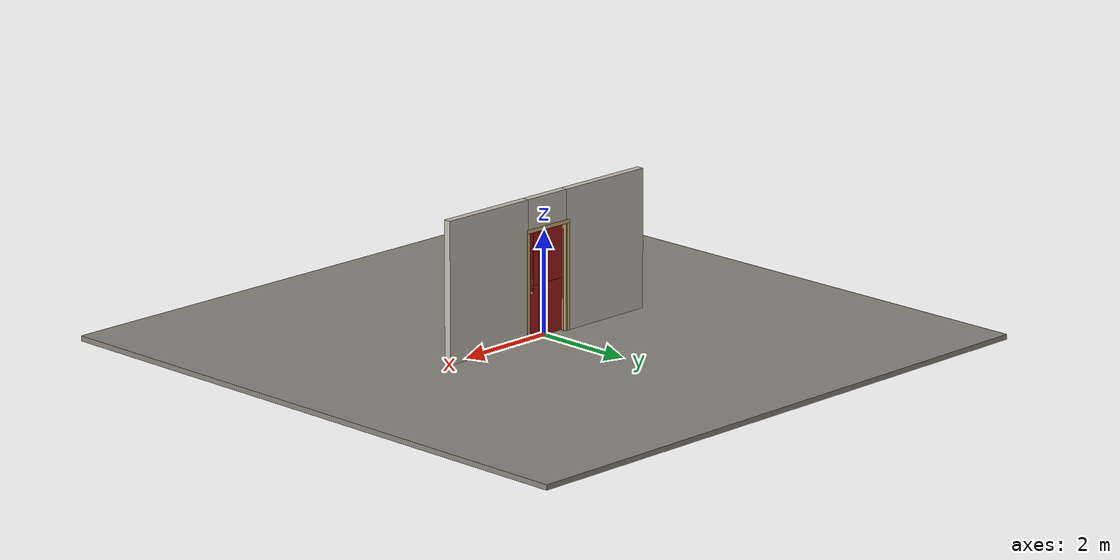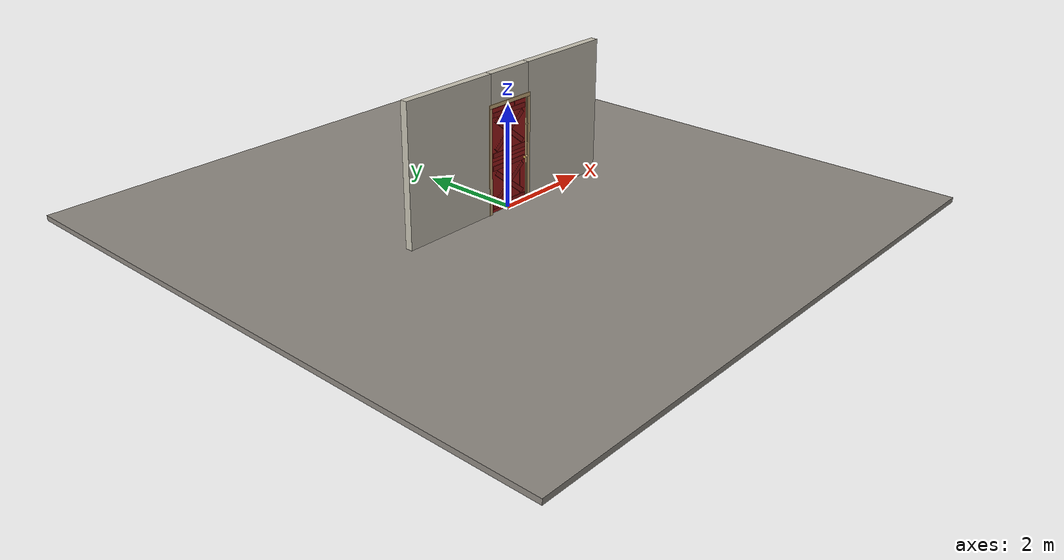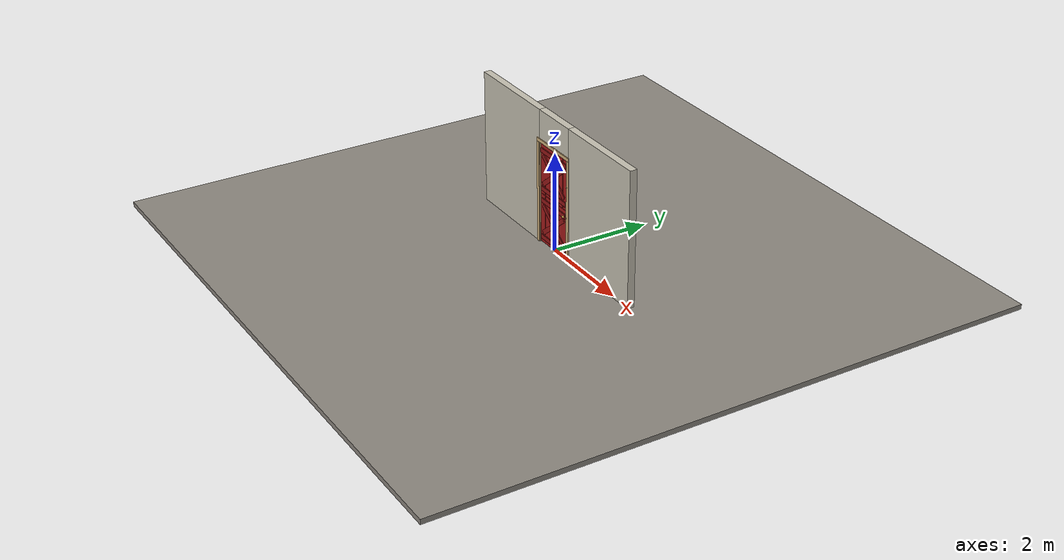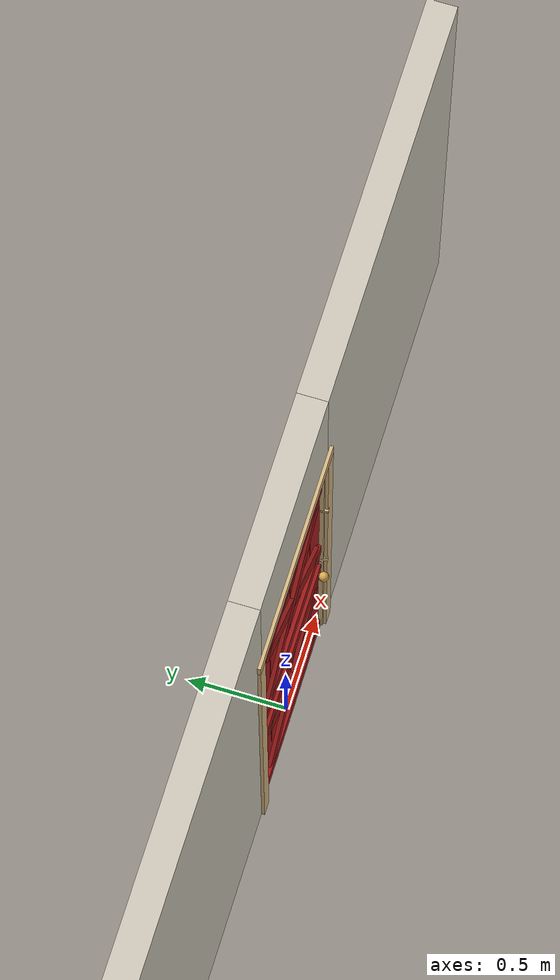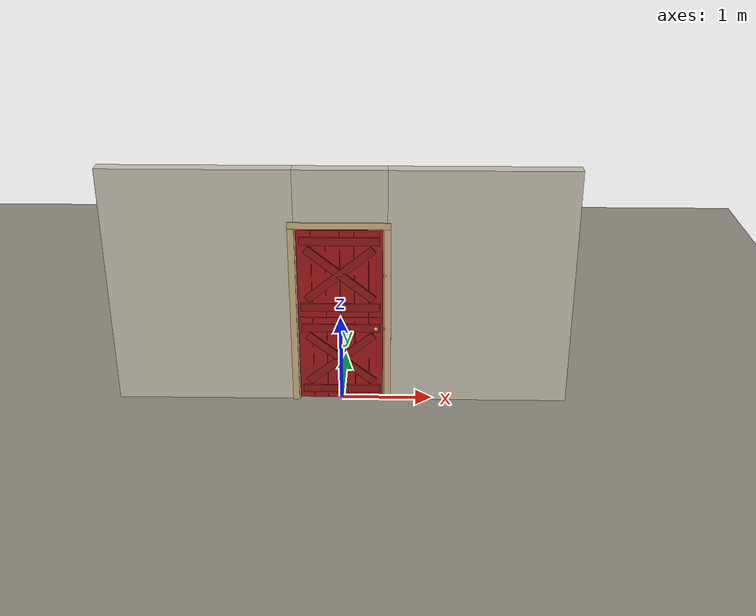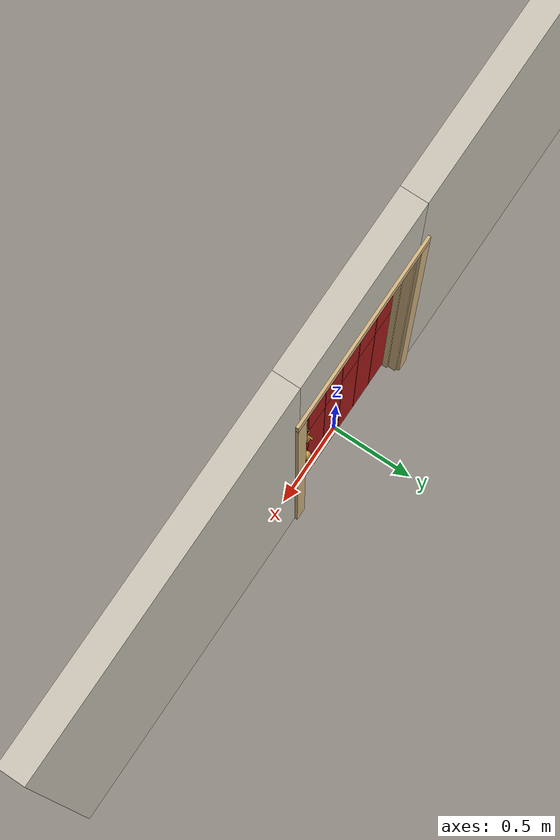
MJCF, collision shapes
<?xml version="1.0" ?>
<mujoco model="db0847_dutch_full">
  <compiler angle="radian" meshdir="../../hardware" texturedir="../../textures" autolimits="true" inertiafromgeom="false"/>
  <option timestep="0.002" integrator="implicitfast" cone="elliptic" impratio="10" noslip_iterations="3">
    <flag multiccd="enable"/>
  </option>
  <size memory="16M"/>
  <default>
    <geom condim="4" solref="0.005 1" solimp="0.95 0.99 0.001"/>
    <joint solreflimit="0.005 1" solimplimit="0.95 0.99 0.001"/>
    <tendon solreflimit="0.005 1"/>
    <equality solref="0.002 1"/>
  </default>
  <visual>
    <headlight ambient="0.4 0.4 0.4" diffuse="0.7 0.7 0.7" specular="0.2 0.2 0.2"/>
    <quality shadowsize="4096"/>
    <map znear="0.01" zfar="60"/>
  </visual>
  <asset>
    <mesh name="hinge_e22b26c0c1" file="hinge_e22b26c0c1.obj"/>
    <mesh name="hinge_jamb_e1d088f8dc" file="hinge_jamb_e1d088f8dc.obj"/>
    <mesh name="knob_d1888f6f03" file="knob_d1888f6f03.obj"/>
    <material name="mat_floor" rgba="0.55 0.53 0.5 1" specular="0.2" shininess="0.15" reflectance="0"/>
    <material name="mat_wall" rgba="0.78 0.76 0.7 1" specular="0.2" shininess="0.1" reflectance="0"/>
    <material name="mat_leaf_lower" rgba="0.65 0.1 0.1 1" specular="0.2" shininess="0.49" reflectance="0"/>
    <material name="mat_leaf_lower_brace" rgba="0.585 0.09 0.09 1" specular="0.2" shininess="0.2" reflectance="0"/>
    <material name="mat_leaf_upper" rgba="0.65 0.1 0.1 1" specular="0.2" shininess="0.49" reflectance="0"/>
    <material name="mat_leaf_upper_brace" rgba="0.585 0.09 0.09 1" specular="0.2" shininess="0.2" reflectance="0"/>
    <material name="mat_op_brass" rgba="0.85 0.66 0.3 1" specular="0.8" shininess="0.75" reflectance="0.4"/>
    <material name="mat_trim" rgba="0.85 0.66 0.3 1" specular="0.8" shininess="0.75" reflectance="0.4"/>
    <material name="mat_bolt" rgba="0.85 0.66 0.3 1" specular="0.8" shininess="0.75" reflectance="0.4"/>
    <material name="mat_joinbolt" rgba="0.85 0.66 0.3 1" specular="0.8" shininess="0.75" reflectance="0.4"/>
    <material name="mat_frame" rgba="0.82 0.7 0.5 1" specular="0.2" shininess="0.45" reflectance="0"/>
    <material name="mat_seal" rgba="0.1 0.1 0.1 1" specular="0.2" shininess="0.1" reflectance="0"/>
    <material name="mat_hinge" rgba="0.65 0.66 0.68 1" specular="0.74" shininess="0.5" reflectance="0.36"/>
    <texture name="skybox" type="skybox" builtin="gradient" rgb1="0.6 0.7 0.85" rgb2="0.9 0.92 0.95" width="256" height="256"/>
  </asset>
  <worldbody>
    <light name="sun" pos="1.5 -2.5 4" dir="-0.3 0.5 -0.8" directional="true" diffuse="0.8 0.8 0.8" specular="0.3 0.3 0.3" castshadow="true"/>
    <light name="fill" pos="-1.5 2.5 3" dir="0.3 -0.5 -0.7" directional="true" diffuse="0.35 0.35 0.4" castshadow="false"/>
    <camera name="robot_view" pos="0 -2.511687 1.734312" xyaxes="1 0 0 0 0.26963 0.962964" fovy="52"/>
    <camera name="far_view" pos="0 2.572687 1.734312" xyaxes="-1 0 0 0 -0.26963 0.962964" fovy="52"/>
    <camera name="iso" pos="1.932062 -2.104938 2.141063" xyaxes="0.741536 0.670913 0 -0.242917 0.268487 0.932151" fovy="46"/>
    <camera name="detail_handle" pos="0.5665 -0.8685 1.176" xyaxes="0.97561 0.219512 0 -0.070934 0.315262 0.94635" fovy="38"/>
    <geom name="floor" type="box" size="6 6 0.05" pos="0 0 -0.05" material="mat_floor" group="0" contype="1" conaffinity="1" friction="0.8 0.005 0.0001" density="2400"/>
    <geom name="wall_left" type="box" size="1.01025 0.0725 1.35" pos="-1.48975 0.0305 1.35" material="mat_wall" group="0" contype="1" conaffinity="1" friction="0.6 0.005 0.0001" density="800"/>
    <geom name="wall_right" type="box" size="0.99525 0.0725 1.35" pos="1.50475 0.0305 1.35" material="mat_wall" group="0" contype="1" conaffinity="1" friction="0.6 0.005 0.0001" density="800"/>
    <geom name="wall_header" type="box" size="0.4945 0.0725 0.303" pos="0.015 0.0305 2.397" material="mat_wall" group="0" contype="1" conaffinity="1" friction="0.6 0.005 0.0001" density="800"/>
    <geom name="jamb_hinge" type="box" size="0.0095 0.0725 1.0225" pos="-0.47 0.0305 1.0225" material="mat_frame" group="0" contype="1" conaffinity="1" friction="0.6 0.005 0.0001" density="400"/>
    <geom name="strike_896_wall_n" type="box" size="0.0245 0.047575 0.0167" pos="0.485 0.055425 0.896" material="mat_frame" group="0" contype="1" conaffinity="1" friction="0.6 0.005 0.0001" density="400"/>
    <geom name="strike_896_wall_p" type="box" size="0.0245 0.008 0.0167" pos="0.485 -0.01585 0.896" material="mat_frame" group="0" contype="1" conaffinity="1" friction="0.6 0.005 0.0001" density="400"/>
    <geom name="strike_896_ramp" type="box" size="0.0245 0.020268 0.0167" pos="0.490408 -0.034645 0.896" quat="0.985179 0 0 0.171531" material="mat_frame" group="0" contype="1" conaffinity="1" friction="0.12 0.005 0.0001" density="400"/>
    <geom name="strike_896_back" type="box" size="0.01615 0.00785 0.0167" pos="0.49335 0 0.896" material="mat_frame" group="0" contype="1" conaffinity="1" friction="0.6 0.005 0.0001" density="400"/>
    <geom name="strike_1524_wall_n" type="box" size="0.0245 0.04775 0.01" pos="0.485 0.05525 1.524" material="mat_frame" group="0" contype="1" conaffinity="1" friction="0.6 0.005 0.0001" density="400"/>
    <geom name="strike_1524_wall_p" type="box" size="0.0245 0.008 0.01" pos="0.485 -0.0155 1.524" material="mat_frame" group="0" contype="1" conaffinity="1" friction="0.6 0.005 0.0001" density="400"/>
    <geom name="strike_1524_ramp" type="box" size="0.0245 0.019412 0.01" pos="0.487296 -0.039595 1.524" quat="0.997916 0 0 0.064529" material="mat_frame" group="0" contype="1" conaffinity="1" friction="0.12 0.005 0.0001" density="400"/>
    <geom name="strike_1524_ramp_n" type="box" size="0.0245 0.019412 0.01" pos="0.487296 0.027595 1.524" quat="0.997916 0 0 -0.064529" material="mat_frame" group="0" contype="1" conaffinity="1" friction="0.12 0.005 0.0001" density="400"/>
    <geom name="strike_1524_back" type="box" size="0.0205 0.0075 0.01" pos="0.489 0 1.524" material="mat_frame" group="0" contype="1" conaffinity="1" friction="0.6 0.005 0.0001" density="400"/>
    <geom name="jamb_strike_0" type="box" size="0.0245 0.0725 0.43965" pos="0.485 0.0305 0.43965" material="mat_frame" group="0" contype="1" conaffinity="1" friction="0.6 0.005 0.0001" density="400"/>
    <geom name="jamb_strike_1" type="box" size="0.0245 0.0725 0.30065" pos="0.485 0.0305 1.21335" material="mat_frame" group="0" contype="1" conaffinity="1" friction="0.6 0.005 0.0001" density="400"/>
    <geom name="jamb_strike_2" type="box" size="0.0245 0.0725 0.2555" pos="0.485 0.0305 1.7895" material="mat_frame" group="0" contype="1" conaffinity="1" friction="0.6 0.005 0.0001" density="400"/>
    <geom name="jamb_head" type="box" size="0.4945 0.0725 0.0095" pos="0.015 0.0305 2.0545" material="mat_frame" group="0" contype="1" conaffinity="1" friction="0.6 0.005 0.0001" density="400"/>
    <geom name="head_stud" type="box" size="0.4945 0.0725 0.015" pos="0.015 0.0305 2.079" material="mat_wall" group="0" contype="1" conaffinity="1" friction="0.6 0.005 0.0001" density="500"/>
    <geom name="stop_hinge" type="box" size="0.0055 0.016 1.0225" pos="-0.455 0.0385 1.0225" material="mat_frame" group="0" contype="1" conaffinity="1" friction="0.6 0.005 0.0001" density="400"/>
    <geom name="stop_strike" type="box" size="0.0055 0.016 1.0225" pos="0.455 0.0385 1.0225" material="mat_frame" group="0" contype="1" conaffinity="1" friction="0.6 0.005 0.0001" density="400"/>
    <geom name="stop_head" type="box" size="0.4605 0.016 0.0055" pos="0 0.0385 2.0395" material="mat_frame" group="0" contype="1" conaffinity="1" friction="0.6 0.005 0.0001" density="400"/>
    <geom name="seal_hinge" type="box" size="0.004 0.003 1.0225" pos="-0.4575 0.025 1.0225" material="mat_seal" group="1" contype="0" conaffinity="0" density="1100"/>
    <geom name="seal_strike" type="box" size="0.004 0.003 1.0225" pos="0.4575 0.025 1.0225" material="mat_seal" group="1" contype="0" conaffinity="0" density="1100"/>
    <geom name="seal_head" type="box" size="0.4405 0.003 0.008" pos="0 0.025 2.033" material="mat_seal" group="1" contype="0" conaffinity="0" density="1100"/>
    <geom name="casing_l_n" type="box" size="0.035 0.008 1.032" pos="-0.5095 -0.05 1.0225" material="mat_frame" group="2" contype="0" conaffinity="0" density="400"/>
    <geom name="casing_r_n" type="box" size="0.035 0.008 1.032" pos="0.5095 -0.05 1.0225" material="mat_frame" group="2" contype="0" conaffinity="0" density="400"/>
    <geom name="casing_h_n" type="box" size="0.5445 0.008 0.035" pos="0 -0.05 2.094" material="mat_frame" group="2" contype="0" conaffinity="0" density="400"/>
    <geom name="casing_l_p" type="box" size="0.035 0.008 1.032" pos="-0.5095 0.111 1.0225" material="mat_frame" group="2" contype="0" conaffinity="0" density="400"/>
    <geom name="casing_r_p" type="box" size="0.035 0.008 1.032" pos="0.5095 0.111 1.0225" material="mat_frame" group="2" contype="0" conaffinity="0" density="400"/>
    <geom name="casing_h_p" type="box" size="0.5445 0.008 0.035" pos="0 0.111 2.094" material="mat_frame" group="2" contype="0" conaffinity="0" density="400"/>
    <geom name="hinge_0_jamb" type="mesh" mesh="hinge_jamb_e1d088f8dc" pos="-0.4605 -0.029 0.262" material="mat_hinge" group="1" contype="0" conaffinity="0" density="7850"/>
    <geom name="hinge_1_jamb" type="mesh" mesh="hinge_jamb_e1d088f8dc" pos="-0.4605 -0.029 0.452" material="mat_hinge" group="1" contype="0" conaffinity="0" density="7850"/>
    <geom name="hinge_2_jamb" type="mesh" mesh="hinge_jamb_e1d088f8dc" pos="-0.4605 -0.029 0.642" material="mat_hinge" group="1" contype="0" conaffinity="0" density="7850"/>
    <geom name="hinge_3_jamb" type="mesh" mesh="hinge_jamb_e1d088f8dc" pos="-0.4605 -0.029 0.832" material="mat_hinge" group="1" contype="0" conaffinity="0" density="7850"/>
    <geom name="hinge_0_jamb_2" type="mesh" mesh="hinge_jamb_e1d088f8dc" pos="-0.4605 -0.029 1.27" material="mat_hinge" group="1" contype="0" conaffinity="0" density="7850"/>
    <geom name="hinge_1_jamb_2" type="mesh" mesh="hinge_jamb_e1d088f8dc" pos="-0.4605 -0.029 1.464" material="mat_hinge" group="1" contype="0" conaffinity="0" density="7850"/>
    <geom name="hinge_2_jamb_2" type="mesh" mesh="hinge_jamb_e1d088f8dc" pos="-0.4605 -0.029 1.658" material="mat_hinge" group="1" contype="0" conaffinity="0" density="7850"/>
    <geom name="hinge_3_jamb_2" type="mesh" mesh="hinge_jamb_e1d088f8dc" pos="-0.4605 -0.029 1.852" material="mat_hinge" group="1" contype="0" conaffinity="0" density="7850"/>
    <site name="approach_point" pos="0 -1.5 0" quat="1 0 0 0" size="0.05" rgba="0.2 0.9 0.2 0.5" group="4"/>
    <site name="goal_point" pos="0 1.5 0" quat="1 0 0 0" size="0.05" rgba="0.2 0.9 0.2 0.5" group="4"/>
    <site name="door_plane_center" pos="0 0 1.0225" quat="1 0 0 0" size="0.02" rgba="0.2 0.9 0.2 0.5" group="4"/>
    <body name="leaf_lower" pos="-0.4605 0 0">
      <inertial pos="0.07502 -0.014211 0.574053" mass="30.766573" quat="0.30158 0.270319 0.651505 -0.641497" diaginertia="1.038222689 2.311571435 3.3339367"/>
      <joint name="leaf_lower_hinge" type="hinge" axis="0 0 -1" pos="0.003 -0.029 0" limited="true" range="0 1.396263" solreflimit="0.02 1" damping="0.30611" frictionloss="0.699742" armature="0.02"/>
      <geom name="leaf_lower_slab" type="box" size="0.457 0.022 0.5" pos="0.46 0 0.512" material="mat_leaf_lower" group="0" contype="1" conaffinity="1" friction="0.4 0.005 0.0001" density="1"/>
      <geom name="leaf_lower_plank_gap_1" type="box" size="0.002 0.023 0.49" pos="0.155333 0 0.512" material="mat_leaf_lower_brace" group="1" contype="0" conaffinity="0" density="1"/>
      <geom name="leaf_lower_plank_gap_2" type="box" size="0.002 0.023 0.49" pos="0.307667 0 0.512" material="mat_leaf_lower_brace" group="1" contype="0" conaffinity="0" density="1"/>
      <geom name="leaf_lower_plank_gap_3" type="box" size="0.002 0.023 0.49" pos="0.46 0 0.512" material="mat_leaf_lower_brace" group="1" contype="0" conaffinity="0" density="1"/>
      <geom name="leaf_lower_plank_gap_4" type="box" size="0.002 0.023 0.49" pos="0.612333 0 0.512" material="mat_leaf_lower_brace" group="1" contype="0" conaffinity="0" density="1"/>
      <geom name="leaf_lower_plank_gap_5" type="box" size="0.002 0.023 0.49" pos="0.764667 0 0.512" material="mat_leaf_lower_brace" group="1" contype="0" conaffinity="0" density="1"/>
      <geom name="leaf_lower_batten_13" type="box" size="0.427 0.01 0.045" pos="0.46 -0.032 0.132" material="mat_leaf_lower_brace" group="1" contype="0" conaffinity="0" density="1"/>
      <geom name="leaf_lower_batten_89" type="box" size="0.427 0.01 0.045" pos="0.46 -0.032 0.892" material="mat_leaf_lower_brace" group="1" contype="0" conaffinity="0" density="1"/>
      <geom name="leaf_lower_brace_z" type="box" size="0.46084 0.01 0.045" pos="0.46 -0.032 0.512" quat="0.943777 0 -0.330582 0" material="mat_leaf_lower_brace" group="1" contype="0" conaffinity="0" density="1"/>
      <geom name="leaf_lower_brace_x" type="box" size="0.46084 0.01 0.045" pos="0.46 -0.032 0.512" quat="0.943777 0 0.330582 0" material="mat_leaf_lower_brace" group="1" contype="0" conaffinity="0" density="1"/>
      <geom name="lower_latch_bolt_faceplate" type="box" size="0.0006 0.01235 0.0267" pos="0.9164 0 0.896" material="mat_bolt" group="1" contype="0" conaffinity="0" density="8500"/>
      <geom name="join_keeper_leg_n" type="box" size="0.007 0.0025 0.013" pos="0.8085 0.035 0.986" quat="0.5 -0.5 0.5 0.5" material="mat_joinbolt" group="0" contype="1" conaffinity="1" friction="0.6 0.005 0.0001" density="7800"/>
      <geom name="join_keeper_leg_p" type="box" size="0.007 0.0025 0.013" pos="0.7855 0.035 0.986" quat="0.5 -0.5 0.5 0.5" material="mat_joinbolt" group="0" contype="1" conaffinity="1" friction="0.6 0.005 0.0001" density="7800"/>
      <geom name="join_keeper_bridge" type="box" size="0.007 0.014 0.0025" pos="0.797 0.0455 0.986" quat="0.5 -0.5 0.5 0.5" material="mat_joinbolt" group="0" contype="1" conaffinity="1" friction="0.6 0.005 0.0001" density="7800"/>
      <geom name="join_keeper_base" type="box" size="0.013 0.02 0.001" pos="0.797 0.023 0.986" quat="0.5 -0.5 0.5 0.5" material="mat_joinbolt" group="1" contype="0" conaffinity="0" density="7800"/>
      <geom name="hinge_0" type="mesh" mesh="hinge_e22b26c0c1" pos="0 -0.029 0.262" material="mat_hinge" group="1" contype="0" conaffinity="0" density="7850"/>
      <geom name="hinge_1" type="mesh" mesh="hinge_e22b26c0c1" pos="0 -0.029 0.452" material="mat_hinge" group="1" contype="0" conaffinity="0" density="7850"/>
      <geom name="hinge_2" type="mesh" mesh="hinge_e22b26c0c1" pos="0 -0.029 0.642" material="mat_hinge" group="1" contype="0" conaffinity="0" density="7850"/>
      <geom name="hinge_3" type="mesh" mesh="hinge_e22b26c0c1" pos="0 -0.029 0.832" material="mat_hinge" group="1" contype="0" conaffinity="0" density="7850"/>
      <body name="lower_handle" pos="0.847 0 0.896">
        <inertial pos="0 0 0" mass="1.151952" quat="0.5 -0.5 0.5 -0.5" diaginertia="0.000312514 0.004264603 0.004264603"/>
        <joint name="lower_handle_hinge" type="hinge" axis="0 -1 0" limited="true" range="0 0.87" damping="0.143614" frictionloss="0.038" stiffness="0.5" springref="-0.5" armature="0.01"/>
        <geom name="lower_handle_spindle" type="cylinder" size="0.006 0.03" pos="0 0 0" quat="0.707107 -0.707107 0 0" material="mat_op_brass" group="1" contype="0" conaffinity="0" density="7850"/>
        <geom name="lower_handle_knob_n" type="mesh" mesh="knob_d1888f6f03" pos="0 -0.022 0" quat="0.707107 0.707107 0 0" material="mat_op_brass" group="1" contype="0" conaffinity="0" density="3000"/>
        <geom name="lower_handle_knob_col_n" type="sphere" size="0.0243" pos="0 -0.0685 0" material="mat_op_brass" group="0" contype="1" conaffinity="1" friction="0.9 0.01 0.0001" density="3000"/>
        <geom name="lower_handle_knob_neck_n" type="cylinder" size="0.011 0.012" pos="0 -0.034 0" quat="0.707107 -0.707107 0 0" material="mat_op_brass" group="3" contype="1" conaffinity="1" rgba="0.8 0.3 0.3 0.25" friction="0.6 0.005 0.0001" density="3000"/>
        <geom name="lower_handle_knob_p" type="mesh" mesh="knob_d1888f6f03" pos="0 0.022 0" quat="-0.707107 0.707107 0 0" material="mat_op_brass" group="1" contype="0" conaffinity="0" density="3000"/>
        <geom name="lower_handle_knob_col_p" type="sphere" size="0.0243" pos="0 0.0685 0" material="mat_op_brass" group="0" contype="1" conaffinity="1" friction="0.9 0.01 0.0001" density="3000"/>
        <geom name="lower_handle_knob_neck_p" type="cylinder" size="0.011 0.012" pos="0 0.034 0" quat="0.707107 -0.707107 0 0" material="mat_op_brass" group="3" contype="1" conaffinity="1" rgba="0.8 0.3 0.3 0.25" friction="0.6 0.005 0.0001" density="3000"/>
        <site name="lower_handle_grip_n" pos="0 -0.0685 0" quat="1 0 0 0" size="0.012" rgba="0.2 0.9 0.2 0.5" group="4"/>
        <site name="lower_handle_grip_p" pos="0 0.0685 0" quat="1 0 0 0" size="0.012" rgba="0.2 0.9 0.2 0.5" group="4"/>
      </body>
      <body name="lower_latch_bolt" pos="0.917 0 0.896">
        <inertial pos="-0.00865 0 0" mass="0.041419" quat="0.92388 -0.382683 0 0" diaginertia="0.000000798 0.000005598 0.000005598"/>
        <joint name="lower_latch_bolt_slide" type="slide" axis="-1 0 0" limited="true" range="0 0.0127" damping="2" frictionloss="0.3" stiffness="300" springref="-0.008333" armature="0.1"/>
        <geom name="lower_latch_bolt_capsule" type="capsule" size="0.00635 0.015" pos="-0.00865 0 0" quat="0.707107 0 0.707107 0" material="mat_bolt" group="0" contype="1" conaffinity="1" friction="0.2 0.005 0.0001" density="8500"/>
      </body>
    </body>
    <body name="leaf_upper" pos="-0.4605 0 0">
      <inertial pos="0.118126 -0.01175 1.505209" mass="31.108616" quat="0.659365 -0.66697 0.227891 0.261639" diaginertia="1.071591887 3.432904524 4.489465113"/>
      <joint name="leaf_upper_hinge" type="hinge" axis="0 0 -1" pos="0.003 -0.029 0" limited="true" range="0 1.396263" solreflimit="0.02 1" damping="0.30611" frictionloss="0.699742" armature="0.02"/>
      <geom name="leaf_upper_slab" type="box" size="0.457 0.022 0.506" pos="0.46 0 1.526" material="mat_leaf_upper" group="0" contype="1" conaffinity="1" friction="0.4 0.005 0.0001" density="1"/>
      <geom name="leaf_upper_plank_gap_1" type="box" size="0.002 0.023 0.496" pos="0.155333 0 1.526" material="mat_leaf_upper_brace" group="1" contype="0" conaffinity="0" density="1"/>
      <geom name="leaf_upper_plank_gap_2" type="box" size="0.002 0.023 0.496" pos="0.307667 0 1.526" material="mat_leaf_upper_brace" group="1" contype="0" conaffinity="0" density="1"/>
      <geom name="leaf_upper_plank_gap_3" type="box" size="0.002 0.023 0.496" pos="0.46 0 1.526" material="mat_leaf_upper_brace" group="1" contype="0" conaffinity="0" density="1"/>
      <geom name="leaf_upper_plank_gap_4" type="box" size="0.002 0.023 0.496" pos="0.612333 0 1.526" material="mat_leaf_upper_brace" group="1" contype="0" conaffinity="0" density="1"/>
      <geom name="leaf_upper_plank_gap_5" type="box" size="0.002 0.023 0.496" pos="0.764667 0 1.526" material="mat_leaf_upper_brace" group="1" contype="0" conaffinity="0" density="1"/>
      <geom name="leaf_upper_batten_114" type="box" size="0.427 0.01 0.045" pos="0.46 -0.032 1.14" material="mat_leaf_upper_brace" group="1" contype="0" conaffinity="0" density="1"/>
      <geom name="leaf_upper_batten_191" type="box" size="0.427 0.01 0.045" pos="0.46 -0.032 1.912" material="mat_leaf_upper_brace" group="1" contype="0" conaffinity="0" density="1"/>
      <geom name="leaf_upper_brace_z" type="box" size="0.464605 0.01 0.045" pos="0.46 -0.032 1.526" quat="0.94229 0 -0.334797 0" material="mat_leaf_upper_brace" group="1" contype="0" conaffinity="0" density="1"/>
      <geom name="leaf_upper_brace_x" type="box" size="0.464605 0.01 0.045" pos="0.46 -0.032 1.526" quat="0.94229 0 0.334797 0" material="mat_leaf_upper_brace" group="1" contype="0" conaffinity="0" density="1"/>
      <geom name="upper_catch_faceplate" type="box" size="0.0006 0.012 0.02" pos="0.9164 0 1.524" material="mat_bolt" group="1" contype="0" conaffinity="0" density="8500"/>
      <geom name="join_bolt_plate" type="box" size="0.064 0.019 0.001" pos="0.797 0.023 1.092" quat="0.5 -0.5 0.5 0.5" material="mat_joinbolt" group="1" contype="0" conaffinity="0" density="7800"/>
      <geom name="join_bolt_guide_0_leg_n" type="box" size="0.006 0.002 0.0125" pos="0.808 0.0345 1.036" quat="0.5 -0.5 0.5 0.5" material="mat_joinbolt" group="1" contype="0" conaffinity="0" density="7800"/>
      <geom name="join_bolt_guide_0_leg_p" type="box" size="0.006 0.002 0.0125" pos="0.786 0.0345 1.036" quat="0.5 -0.5 0.5 0.5" material="mat_joinbolt" group="1" contype="0" conaffinity="0" density="7800"/>
      <geom name="join_bolt_guide_0_bridge" type="box" size="0.006 0.013 0.002" pos="0.797 0.045 1.036" quat="0.5 -0.5 0.5 0.5" material="mat_joinbolt" group="1" contype="0" conaffinity="0" density="7800"/>
      <geom name="join_bolt_guide_1_leg_n" type="box" size="0.006 0.002 0.0125" pos="0.808 0.0345 1.146" quat="0.5 -0.5 0.5 0.5" material="mat_joinbolt" group="1" contype="0" conaffinity="0" density="7800"/>
      <geom name="join_bolt_guide_1_leg_p" type="box" size="0.006 0.002 0.0125" pos="0.786 0.0345 1.146" quat="0.5 -0.5 0.5 0.5" material="mat_joinbolt" group="1" contype="0" conaffinity="0" density="7800"/>
      <geom name="join_bolt_guide_1_bridge" type="box" size="0.006 0.013 0.002" pos="0.797 0.045 1.146" quat="0.5 -0.5 0.5 0.5" material="mat_joinbolt" group="1" contype="0" conaffinity="0" density="7800"/>
      <geom name="hinge_0_2" type="mesh" mesh="hinge_e22b26c0c1" pos="0 -0.029 1.27" material="mat_hinge" group="1" contype="0" conaffinity="0" density="7850"/>
      <geom name="hinge_1_2" type="mesh" mesh="hinge_e22b26c0c1" pos="0 -0.029 1.464" material="mat_hinge" group="1" contype="0" conaffinity="0" density="7850"/>
      <geom name="hinge_2_2" type="mesh" mesh="hinge_e22b26c0c1" pos="0 -0.029 1.658" material="mat_hinge" group="1" contype="0" conaffinity="0" density="7850"/>
      <geom name="hinge_3_2" type="mesh" mesh="hinge_e22b26c0c1" pos="0 -0.029 1.852" material="mat_hinge" group="1" contype="0" conaffinity="0" density="7850"/>
      <body name="upper_catch" pos="0.917 0 1.524">
        <inertial pos="-0.013 0 0" mass="0.02884" quat="0 0 0.707107 0.707107" diaginertia="0.000000491 0.000002465 0.000002465"/>
        <joint name="upper_catch_slide" type="slide" axis="-1 0 0" limited="true" range="0 0.004" damping="2" frictionloss="0.3" stiffness="4000" springref="-0.00375" armature="0.1"/>
        <geom name="upper_catch_capsule" type="capsule" size="0.006 0.011" pos="-0.013 0 0" quat="0.707107 0 0.707107 0" material="mat_bolt" group="0" contype="1" conaffinity="1" friction="0.2 0.005 0.0001" density="8500"/>
      </body>
      <body name="join_bolt" pos="0.797 0.034 1.02">
        <inertial pos="0 0.00492 0.025264" mass="0.111784" quat="0.065075 0.704106 0.065075 0.704106" diaginertia="0.000009833 0.000100603 0.000108548"/>
        <joint name="join_bolt_slide" type="slide" axis="0 0 1" limited="true" range="0 0.05" damping="1" frictionloss="1" armature="0.1"/>
        <geom name="join_bolt_rod" type="capsule" size="0.006 0.044" pos="0 0 0.016" quat="0 1 0 0" material="mat_joinbolt" group="0" contype="1" conaffinity="1" friction="0.6 0.005 0.0001" density="7850"/>
        <geom name="join_bolt_knob" type="capsule" size="0.005 0.01" pos="0 0.015 0.055" quat="0.707107 -0.707107 0 0" material="mat_joinbolt" group="0" contype="1" conaffinity="1" friction="0.6 0.005 0.0001" density="7850"/>
        <geom name="join_bolt_knob_end" type="sphere" size="0.00675" pos="0 0.03 0.055" material="mat_joinbolt" group="1" contype="0" conaffinity="0" density="7850"/>
        <site name="join_bolt_grip" pos="0 0.034 0.055" quat="1 0 0 0" size="0.012" rgba="0.2 0.9 0.2 0.5" group="4"/>
      </body>
    </body>
  </worldbody>
  <tendon>
    <fixed name="lower_latch_bolt_coupling" limited="true" range="0 10">
      <joint joint="lower_latch_bolt_slide" coef="1"/>
      <joint joint="lower_handle_hinge" coef="-0.015679"/>
    </fixed>
  </tendon>
  <sensor>
    <jointpos name="leaf_lower_hinge_pos" joint="leaf_lower_hinge"/>
    <jointvel name="leaf_lower_hinge_vel" joint="leaf_lower_hinge"/>
    <jointpos name="leaf_upper_hinge_pos" joint="leaf_upper_hinge"/>
    <jointvel name="leaf_upper_hinge_vel" joint="leaf_upper_hinge"/>
    <jointpos name="lower_handle_hinge_pos" joint="lower_handle_hinge"/>
    <jointvel name="lower_handle_hinge_vel" joint="lower_handle_hinge"/>
    <jointpos name="lower_latch_bolt_slide_pos" joint="lower_latch_bolt_slide"/>
    <jointvel name="lower_latch_bolt_slide_vel" joint="lower_latch_bolt_slide"/>
    <jointpos name="upper_catch_slide_pos" joint="upper_catch_slide"/>
    <jointvel name="upper_catch_slide_vel" joint="upper_catch_slide"/>
    <jointpos name="join_bolt_slide_pos" joint="join_bolt_slide"/>
    <jointvel name="join_bolt_slide_vel" joint="join_bolt_slide"/>
  </sensor>
</mujoco>
